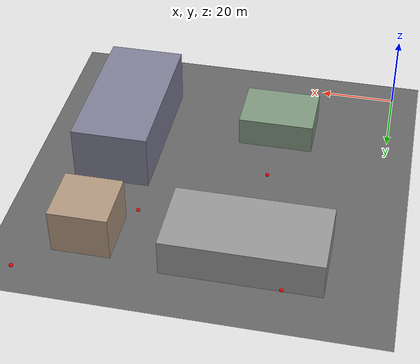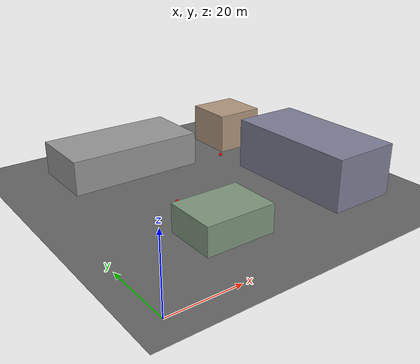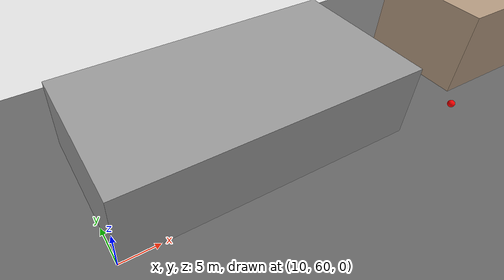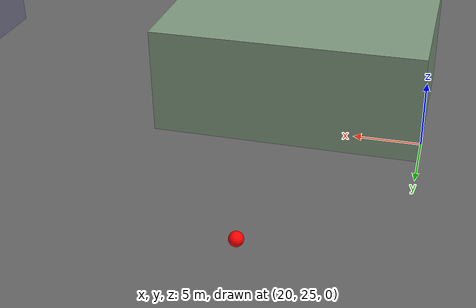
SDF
<?xml version="1.0" ?>
<sdf version="1.9">
  <world name="small_sar">
    <!-- Physics -->
    <physics type="ode">
      <max_step_size>0.004</max_step_size>
      <real_time_factor>1.0</real_time_factor>
      <real_time_update_rate>250</real_time_update_rate>
    </physics>
    <gravity>0 0 -9.8</gravity>
    <magnetic_field>6e-06 2.3e-05 -4.2e-05</magnetic_field>

    <spherical_coordinates>
      <surface_model>EARTH_WGS84</surface_model>
      <world_frame_orientation>ENU</world_frame_orientation>
      <latitude_deg>47.397971057728974</latitude_deg>
      <longitude_deg>8.546163739800146</longitude_deg>
      <elevation>0</elevation>
    </spherical_coordinates>

    <!-- Lighting -->
    <light type="directional" name="sun">
      <cast_shadows>true</cast_shadows>
      <pose>0 0 10 0 0 0</pose>
      <diffuse>0.8 0.8 0.8 1</diffuse>
      <specular>0.2 0.2 0.2 1</specular>
      <attenuation>
        <range>1000</range>
        <constant>0.9</constant>
        <linear>0.01</linear>
        <quadratic>0.001</quadratic>
      </attenuation>
      <direction>-0.5 0.1 -0.9</direction>
    </light>

    <!-- Ground -->
    <model name="ground_plane">
      <static>true</static>
      <pose>50 50 0 0 0 0</pose>
      <link name="link">
        <collision name="collision">
          <geometry>
            <plane>
              <normal>0 0 1</normal>
              <size>120 120</size>
            </plane>
          </geometry>
          <surface>
            <friction>
              <ode>
                <mu>100</mu>
                <mu2>50</mu2>
              </ode>
            </friction>
          </surface>
        </collision>
        <visual name="visual">
          <geometry>
            <plane>
              <normal>0 0 1</normal>
              <size>120 120</size>
            </plane>
          </geometry>
          <material>
            <ambient>0.3 0.3 0.3 1</ambient>
            <diffuse>0.4 0.4 0.4 1</diffuse>
            <specular>0.1 0.1 0.1 1</specular>
          </material>
        </visual>
      </link>
    </model>

    <!-- Buildings -->
    <!-- Building 1: Centered at 30, 70. Size 40x20, H=10 -->
    <model name="building_1">
      <static>true</static>
      <pose>30 70 5 0 0 0</pose>
      <link name="link">
        <collision name="collision">
          <geometry>
            <box>
              <size>40 20 10</size>
            </box>
          </geometry>
        </collision>
        <visual name="visual">
          <geometry>
            <box>
              <size>40 20 10</size>
            </box>
          </geometry>
          <material>
            <ambient>0.6 0.6 0.6 1</ambient>
            <diffuse>0.6 0.6 0.6 1</diffuse>
          </material>
        </visual>
      </link>
    </model>

    <!-- Building 2: Centered at 70, 30. Size 20x40, H=15 -->
    <model name="building_2">
      <static>true</static>
      <pose>70 30 7.5 0 0 0</pose>
      <link name="link">
        <collision name="collision">
          <geometry>
            <box>
              <size>20 40 15</size>
            </box>
          </geometry>
        </collision>
        <visual name="visual">
          <geometry>
            <box>
              <size>20 40 15</size>
            </box>
          </geometry>
          <material>
            <ambient>0.5 0.5 0.6 1</ambient>
            <diffuse>0.5 0.5 0.6 1</diffuse>
          </material>
        </visual>
      </link>
    </model>

    <!-- Building 3: Centered at 70, 70. Size 15x15, H=12 -->
    <model name="building_3">
      <static>true</static>
      <pose>70 70 6 0 0 0</pose>
      <link name="link">
        <collision name="collision">
          <geometry>
            <box>
              <size>15 15 12</size>
            </box>
          </geometry>
        </collision>
        <visual name="visual">
          <geometry>
            <box>
              <size>15 15 12</size>
            </box>
          </geometry>
          <material>
            <ambient>0.7 0.6 0.5 1</ambient>
            <diffuse>0.7 0.6 0.5 1</diffuse>
          </material>
        </visual>
      </link>
    </model>

    <!-- Building 4: Centered at 30, 20. Size 20x15, H=8 -->
    <model name="building_4">
      <static>true</static>
      <pose>30 20 4 0 0 0</pose>
      <link name="link">
        <collision name="collision">
          <geometry>
            <box>
              <size>20 15 8</size>
            </box>
          </geometry>
        </collision>
        <visual name="visual">
          <geometry>
            <box>
              <size>20 15 8</size>
            </box>
          </geometry>
          <material>
            <ambient>0.5 0.6 0.5 1</ambient>
            <diffuse>0.5 0.6 0.5 1</diffuse>
          </material>
        </visual>
      </link>
    </model>

    <!-- Victims (Visual Markers Only) -->
    <!-- Victim 1 -->
    <model name="victim_1">
      <static>true</static>
      <pose>30 40 0.5 0 0 0</pose>
      <link name="link">
        <visual name="visual">
          <geometry>
            <sphere>
              <radius>0.5</radius>
            </sphere>
          </geometry>
          <material>
            <ambient>1 0 0 1</ambient>
            <diffuse>1 0 0 1</diffuse>
            <emissive>1 0 0 1</emissive>
          </material>
        </visual>
      </link>
    </model>

    <!-- Victim 2 -->
    <model name="victim_2">
      <static>true</static>
      <pose>80 20 0.5 0 0 0</pose>
      <link name="link">
        <visual name="visual">
          <geometry>
            <sphere>
              <radius>0.5</radius>
            </sphere>
          </geometry>
          <material>
            <ambient>1 0 0 1</ambient>
            <diffuse>1 0 0 1</diffuse>
            <emissive>1 0 0 1</emissive>
          </material>
        </visual>
      </link>
    </model>

    <!-- Victim 3 -->
    <model name="victim_3">
      <static>true</static>
      <pose>20 80 0.5 0 0 0</pose>
      <link name="link">
        <visual name="visual">
          <geometry>
            <sphere>
              <radius>0.5</radius>
            </sphere>
          </geometry>
          <material>
            <ambient>1 0 0 1</ambient>
            <diffuse>1 0 0 1</diffuse>
            <emissive>1 0 0 1</emissive>
          </material>
        </visual>
      </link>
    </model>

    <!-- Victim 4 -->
    <model name="victim_4">
      <static>true</static>
      <pose>60 60 0.5 0 0 0</pose>
      <link name="link">
        <visual name="visual">
          <geometry>
            <sphere>
              <radius>0.5</radius>
            </sphere>
          </geometry>
          <material>
            <ambient>1 0 0 1</ambient>
            <diffuse>1 0 0 1</diffuse>
            <emissive>1 0 0 1</emissive>
          </material>
        </visual>
      </link>
    </model>

    <!-- Victim 5 -->
    <model name="victim_5">
      <static>true</static>
      <pose>85 85 0.5 0 0 0</pose>
      <link name="link">
        <visual name="visual">
          <geometry>
            <sphere>
              <radius>0.5</radius>
            </sphere>
          </geometry>
          <material>
            <ambient>1 0 0 1</ambient>
            <diffuse>1 0 0 1</diffuse>
            <emissive>1 0 0 1</emissive>
          </material>
        </visual>
      </link>
    </model>

  </world>
</sdf>
